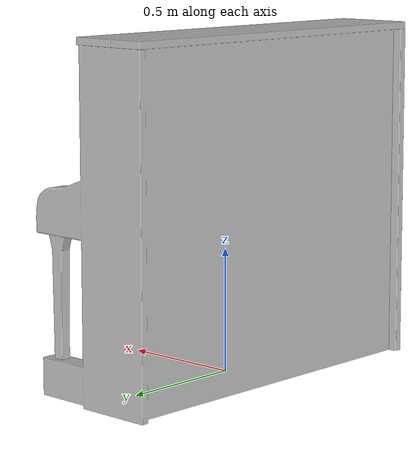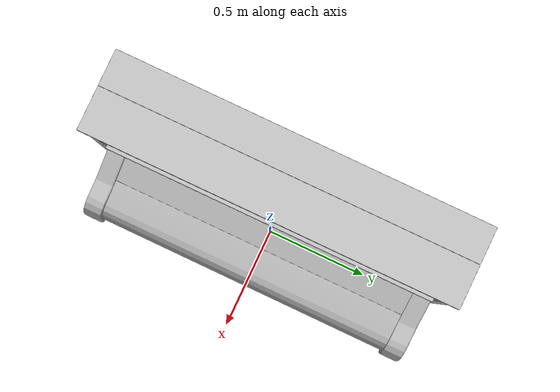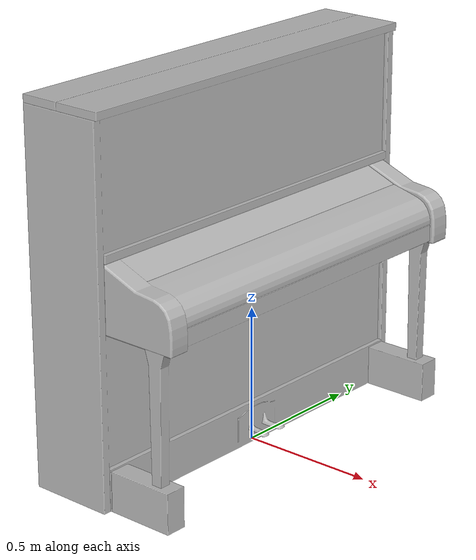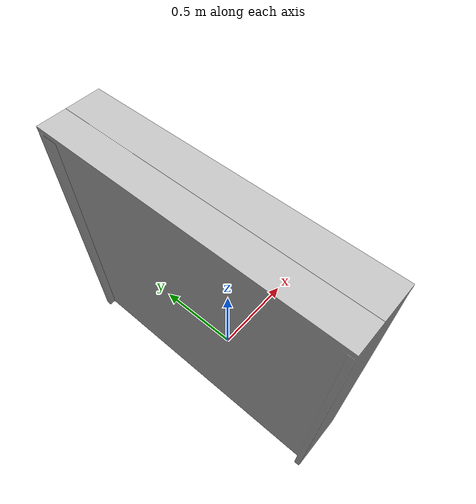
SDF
<?xml version='1.0'?>
<sdf version='1.4'>
  <model name='143'>
    <pose>0 0 0 0 0 0</pose>
    <static>true</static>
    <link name='link'>
      <collision name='collision'>
        <pose>0 0 0 0 0 0</pose>
        <geometry>
          <box>
            <size>0.6 1.52 2</size>
          </box>
        </geometry>
      </collision>
      <visual name='visual'>
        <pose>0 0 0 0 0 0</pose>
        <geometry>
          <mesh><uri>model://143/143.dae</uri></mesh>
        </geometry>
      </visual>
    </link>
  </model>
</sdf>
